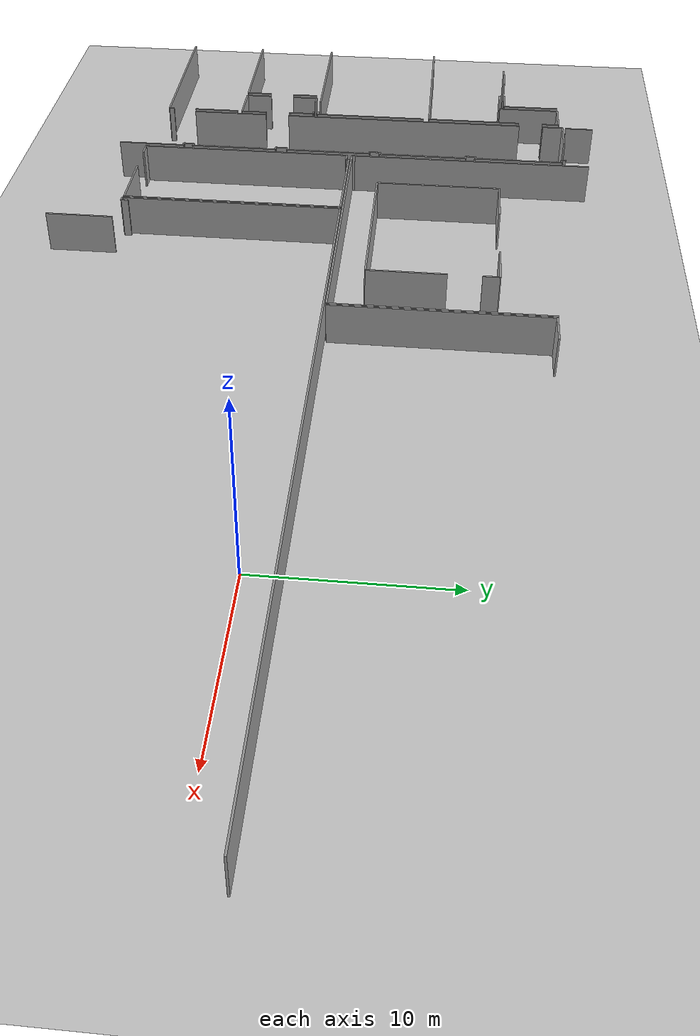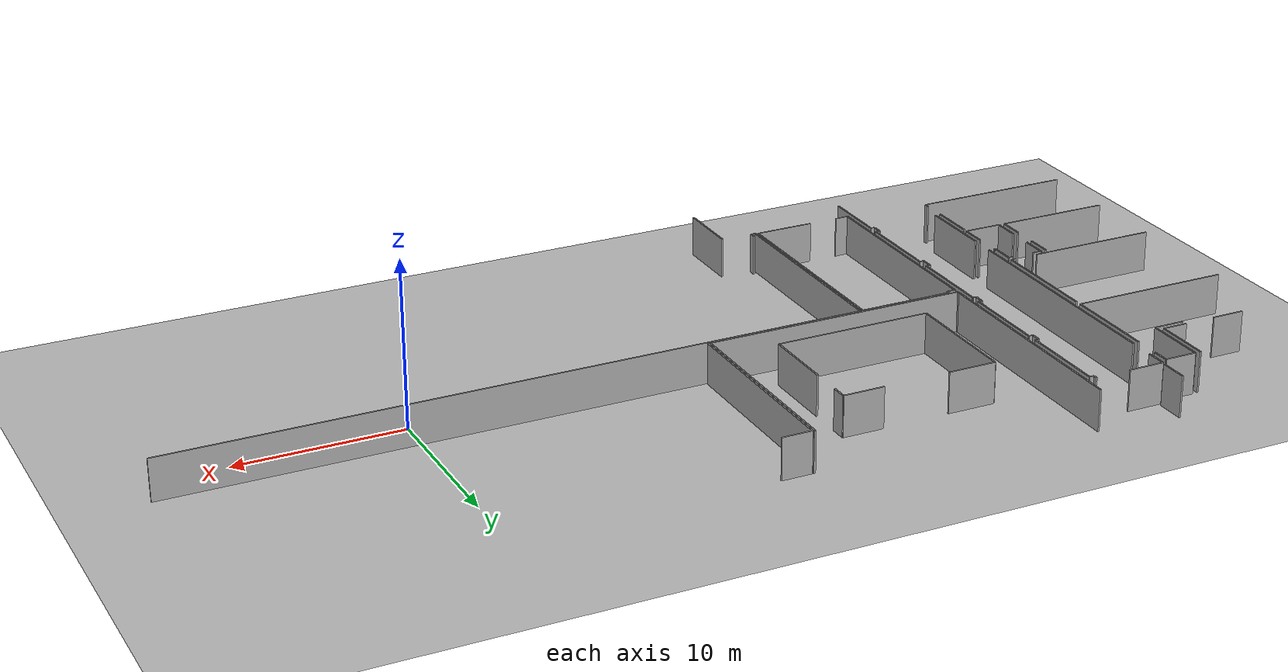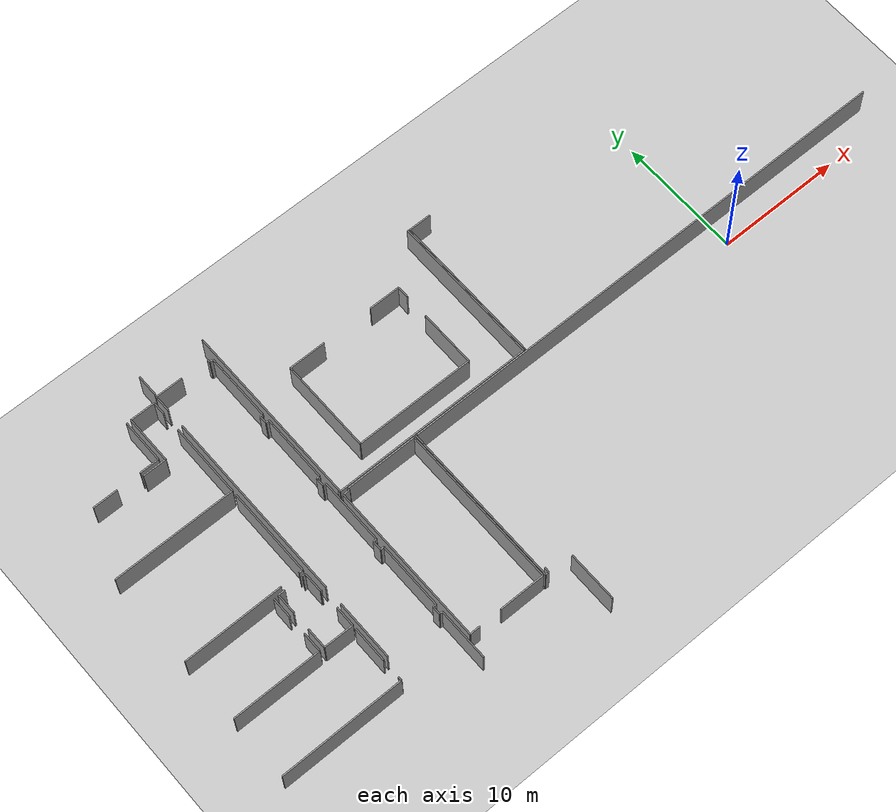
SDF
<sdf version="1.6">
 <world name="default">
  <model name="ground_plane">
   <static>1</static>
   <link name="link">
    <collision name="collision">
     <geometry><plane><normal>0 0 1</normal><size>100 100</size></plane></geometry>
     <surface><friction><ode><mu>100</mu><mu2>50</mu2></ode></friction></surface>
    </collision>
    <visual name="visual">
     <cast_shadows>0</cast_shadows>
     <geometry><plane><normal>0 0 1</normal><size>100 100</size></plane></geometry>
     <material>
      <script><uri>file://media/materials/scripts/gazebo.material</uri><name>Gazebo/Grey</name></script>
     </material>
    </visual>
   </link>
  </model>
  <model name="50010536_PLAN3">
   <static>1</static>
   <link name="Wall_218">
    <collision name="Wall_218_Collision">
     <geometry><box><size>1.7346919341 0.1 2.5</size></box></geometry>
     <pose>0.867345967051 0 1.25 0 0 0</pose>
    </collision>
    <visual name="Wall_218_Visual">
     <pose>0.867345967051 0 1.25 0 0 0</pose>
     <geometry><box><size>1.7346919341 0.1 2.5</size></box></geometry>
     <material>
      <script><uri>file://media/materials/scripts/gazebo.material</uri><name>Gazebo/Grey</name></script>
      <ambient>1 1 1 1</ambient>
     </material>
    </visual>
    <pose>64.3639018506 -13.967482462 0 0 0 1.57079632679</pose>
   </link>
   <link name="Wall_229">
    <collision name="Wall_229_Collision">
     <geometry><box><size>3.50798336666 0.1 2.5</size></box></geometry>
     <pose>1.75399168333 0 1.25 0 0 0</pose>
    </collision>
    <visual name="Wall_229_Visual">
     <pose>1.75399168333 0 1.25 0 0 0</pose>
     <geometry><box><size>3.50798336666 0.1 2.5</size></box></geometry>
     <material>
      <script><uri>file://media/materials/scripts/gazebo.material</uri><name>Gazebo/Grey</name></script>
      <ambient>1 1 1 1</ambient>
     </material>
    </visual>
    <pose>61.6185125226 -14.4126464146 0 0 0 -1.57079632679</pose>
   </link>
   <link name="Wall_230">
    <collision name="Wall_230_Collision">
     <geometry><box><size>1.52544202139 0.1 2.5</size></box></geometry>
     <pose>0.762721010697 0 1.25 0 0 0</pose>
    </collision>
    <visual name="Wall_230_Visual">
     <pose>0.762721010697 0 1.25 0 0 0</pose>
     <geometry><box><size>1.52544202139 0.1 2.5</size></box></geometry>
     <material>
      <script><uri>file://media/materials/scripts/gazebo.material</uri><name>Gazebo/Grey</name></script>
      <ambient>1 1 1 1</ambient>
     </material>
    </visual>
    <pose>61.6185125226 -17.9206297813 0 0 0 3.14159265359</pose>
   </link>
   <link name="Wall_231">
    <collision name="Wall_231_Collision">
     <geometry><box><size>1.97035261909 0.1 2.5</size></box></geometry>
     <pose>0.985176309543 0 1.25 0 0 0</pose>
    </collision>
    <visual name="Wall_231_Visual">
     <pose>0.985176309543 0 1.25 0 0 0</pose>
     <geometry><box><size>1.97035261909 0.1 2.5</size></box></geometry>
     <material>
      <script><uri>file://media/materials/scripts/gazebo.material</uri><name>Gazebo/Grey</name></script>
      <ambient>1 1 1 1</ambient>
     </material>
    </visual>
    <pose>58.1933149224 -17.9206297813 0 0 0 -3.14081935822</pose>
   </link>
   <link name="Wall_235">
    <collision name="Wall_235_Collision">
     <geometry><box><size>1.86623496175 0.1 2.5</size></box></geometry>
     <pose>0.933117480875 0 1.25 0 0 0</pose>
    </collision>
    <visual name="Wall_235_Visual">
     <pose>0.933117480875 0 1.25 0 0 0</pose>
     <geometry><box><size>1.86623496175 0.1 2.5</size></box></geometry>
     <material>
      <script><uri>file://media/materials/scripts/gazebo.material</uri><name>Gazebo/Grey</name></script>
      <ambient>1 1 1 1</ambient>
     </material>
    </visual>
    <pose>60.1077992572 -18.2413611402 0 0 0 0.0</pose>
   </link>
   <link name="Wall_236">
    <collision name="Wall_236_Collision">
     <geometry><box><size>3.81195441704 0.1 2.5</size></box></geometry>
     <pose>1.90597720852 0 1.25 0 0 0</pose>
    </collision>
    <visual name="Wall_236_Visual">
     <pose>1.90597720852 0 1.25 0 0 0</pose>
     <geometry><box><size>3.81195441704 0.1 2.5</size></box></geometry>
     <material>
      <script><uri>file://media/materials/scripts/gazebo.material</uri><name>Gazebo/Grey</name></script>
      <ambient>1 1 1 1</ambient>
     </material>
    </visual>
    <pose>61.974034219 -18.2413611402 0 0 0 1.57079632679</pose>
   </link>
   <link name="Wall_237">
    <collision name="Wall_237_Collision">
     <geometry><box><size>1.95232200108 0.1 2.5</size></box></geometry>
     <pose>0.97616100054 0 1.25 0 0 0</pose>
    </collision>
    <visual name="Wall_237_Visual">
     <pose>0.97616100054 0 1.25 0 0 0</pose>
     <geometry><box><size>1.95232200108 0.1 2.5</size></box></geometry>
     <material>
      <script><uri>file://media/materials/scripts/gazebo.material</uri><name>Gazebo/Grey</name></script>
      <ambient>1 1 1 1</ambient>
     </material>
    </visual>
    <pose>61.974034219 -14.4294067232 0 0 0 0.0</pose>
   </link>
   <link name="Wall_238">
    <collision name="Wall_238_Collision">
     <geometry><box><size>1.05005872457 0.1 2.5</size></box></geometry>
     <pose>0.525029362283 0 1.25 0 0 0</pose>
    </collision>
    <visual name="Wall_238_Visual">
     <pose>0.525029362283 0 1.25 0 0 0</pose>
     <geometry><box><size>1.05005872457 0.1 2.5</size></box></geometry>
     <material>
      <script><uri>file://media/materials/scripts/gazebo.material</uri><name>Gazebo/Grey</name></script>
      <ambient>1 1 1 1</ambient>
     </material>
    </visual>
    <pose>63.92635622 -14.4294067232 0 0 0 -1.57079632679</pose>
   </link>
   <link name="Wall_239">
    <collision name="Wall_239_Collision">
     <geometry><box><size>5.89505761356 0.1 2.5</size></box></geometry>
     <pose>2.94752880678 0 1.25 0 0 0</pose>
    </collision>
    <visual name="Wall_239_Visual">
     <pose>2.94752880678 0 1.25 0 0 0</pose>
     <geometry><box><size>5.89505761356 0.1 2.5</size></box></geometry>
     <material>
      <script><uri>file://media/materials/scripts/gazebo.material</uri><name>Gazebo/Grey</name></script>
      <ambient>1 1 1 1</ambient>
     </material>
    </visual>
    <pose>63.92635622 -17.0252229946 0 0 0 -1.57079632679</pose>
   </link>
   <link name="Wall_240">
    <collision name="Wall_240_Collision">
     <geometry><box><size>9.68034830641 0.1 2.5</size></box></geometry>
     <pose>4.8401741532 0 1.25 0 0 0</pose>
    </collision>
    <visual name="Wall_240_Visual">
     <pose>4.8401741532 0 1.25 0 0 0</pose>
     <geometry><box><size>9.68034830641 0.1 2.5</size></box></geometry>
     <material>
      <script><uri>file://media/materials/scripts/gazebo.material</uri><name>Gazebo/Grey</name></script>
      <ambient>1 1 1 1</ambient>
     </material>
    </visual>
    <pose>63.92635622 -22.9202806082 0 0 0 -3.14130409116</pose>
   </link>
   <link name="Wall_243">
    <collision name="Wall_243_Collision">
     <geometry><box><size>7.04263086055 0.1 2.5</size></box></geometry>
     <pose>3.52131543028 0 1.25 0 0 0</pose>
    </collision>
    <visual name="Wall_243_Visual">
     <pose>3.52131543028 0 1.25 0 0 0</pose>
     <geometry><box><size>7.04263086055 0.1 2.5</size></box></geometry>
     <material>
      <script><uri>file://media/materials/scripts/gazebo.material</uri><name>Gazebo/Grey</name></script>
      <ambient>1 1 1 1</ambient>
     </material>
    </visual>
    <pose>63.929911437 -23.2859600673 0 0 0 -1.57079632679</pose>
   </link>
   <link name="Wall_244">
    <collision name="Wall_244_Collision">
     <geometry><box><size>0.320985302987 0.1 2.5</size></box></geometry>
     <pose>0.160492651494 0 1.25 0 0 0</pose>
    </collision>
    <visual name="Wall_244_Visual">
     <pose>0.160492651494 0 1.25 0 0 0</pose>
     <geometry><box><size>0.320985302987 0.1 2.5</size></box></geometry>
     <material>
      <script><uri>file://media/materials/scripts/gazebo.material</uri><name>Gazebo/Grey</name></script>
      <ambient>1 1 1 1</ambient>
     </material>
    </visual>
    <pose>63.929911437 -30.3285909278 0 0 0 3.14159265359</pose>
   </link>
   <link name="Wall_245">
    <collision name="Wall_245_Collision">
     <geometry><box><size>7.89768474657 0.1 2.5</size></box></geometry>
     <pose>3.94884237328 0 1.25 0 0 0</pose>
    </collision>
    <visual name="Wall_245_Visual">
     <pose>3.94884237328 0 1.25 0 0 0</pose>
     <geometry><box><size>7.89768474657 0.1 2.5</size></box></geometry>
     <material>
      <script><uri>file://media/materials/scripts/gazebo.material</uri><name>Gazebo/Grey</name></script>
      <ambient>1 1 1 1</ambient>
     </material>
    </visual>
    <pose>62.1340189823 -30.3285909278 0 0 0 -3.1391167744</pose>
   </link>
   <link name="Wall_248">
    <collision name="Wall_248_Collision">
     <geometry><box><size>1.59807002508 0.1 2.5</size></box></geometry>
     <pose>0.799035012538 0 1.25 0 0 0</pose>
    </collision>
    <visual name="Wall_248_Visual">
     <pose>0.799035012538 0 1.25 0 0 0</pose>
     <geometry><box><size>1.59807002508 0.1 2.5</size></box></geometry>
     <material>
      <script><uri>file://media/materials/scripts/gazebo.material</uri><name>Gazebo/Grey</name></script>
      <ambient>1 1 1 1</ambient>
     </material>
    </visual>
    <pose>61.2502936228 -30.6886836174 0 0 0 -1.57079632679</pose>
   </link>
   <link name="Wall_249">
    <collision name="Wall_249_Collision">
     <geometry><box><size>1.58181760467 0.1 2.5</size></box></geometry>
     <pose>0.790908802336 0 1.25 0 0 0</pose>
    </collision>
    <visual name="Wall_249_Visual">
     <pose>0.790908802336 0 1.25 0 0 0</pose>
     <geometry><box><size>1.58181760467 0.1 2.5</size></box></geometry>
     <material>
      <script><uri>file://media/materials/scripts/gazebo.material</uri><name>Gazebo/Grey</name></script>
      <ambient>1 1 1 1</ambient>
     </material>
    </visual>
    <pose>61.2502936228 -33.8086404469 0 0 0 -1.57079632679</pose>
   </link>
   <link name="Wall_250">
    <collision name="Wall_250_Collision">
     <geometry><box><size>6.99895248072 0.1 2.5</size></box></geometry>
     <pose>3.49947624036 0 1.25 0 0 0</pose>
    </collision>
    <visual name="Wall_250_Visual">
     <pose>3.49947624036 0 1.25 0 0 0</pose>
     <geometry><box><size>6.99895248072 0.1 2.5</size></box></geometry>
     <material>
      <script><uri>file://media/materials/scripts/gazebo.material</uri><name>Gazebo/Grey</name></script>
      <ambient>1 1 1 1</ambient>
     </material>
    </visual>
    <pose>61.2502936228 -35.3904580516 0 0 0 3.14159265359</pose>
   </link>
   <link name="Wall_251">
    <collision name="Wall_251_Collision">
     <geometry><box><size>1.64047868457 0.1 2.5</size></box></geometry>
     <pose>0.820239342285 0 1.25 0 0 0</pose>
    </collision>
    <visual name="Wall_251_Visual">
     <pose>0.820239342285 0 1.25 0 0 0</pose>
     <geometry><box><size>1.64047868457 0.1 2.5</size></box></geometry>
     <material>
      <script><uri>file://media/materials/scripts/gazebo.material</uri><name>Gazebo/Grey</name></script>
      <ambient>1 1 1 1</ambient>
     </material>
    </visual>
    <pose>61.6284163413 -35.3998539822 0 0 0 1.57079632679</pose>
   </link>
   <link name="Wall_252">
    <collision name="Wall_252_Collision">
     <geometry><box><size>1.58867409453 0.1 2.5</size></box></geometry>
     <pose>0.794337047265 0 1.25 0 0 0</pose>
    </collision>
    <visual name="Wall_252_Visual">
     <pose>0.794337047265 0 1.25 0 0 0</pose>
     <geometry><box><size>1.58867409453 0.1 2.5</size></box></geometry>
     <material>
      <script><uri>file://media/materials/scripts/gazebo.material</uri><name>Gazebo/Grey</name></script>
      <ambient>1 1 1 1</ambient>
     </material>
    </visual>
    <pose>61.6284163413 -32.2524711932 0 0 0 1.57079632679</pose>
   </link>
   <link name="Wall_253">
    <collision name="Wall_253_Collision">
     <geometry><box><size>0.538361425896 0.1 2.5</size></box></geometry>
     <pose>0.269180712948 0 1.25 0 0 0</pose>
    </collision>
    <visual name="Wall_253_Visual">
     <pose>0.269180712948 0 1.25 0 0 0</pose>
     <geometry><box><size>0.538361425896 0.1 2.5</size></box></geometry>
     <material>
      <script><uri>file://media/materials/scripts/gazebo.material</uri><name>Gazebo/Grey</name></script>
      <ambient>1 1 1 1</ambient>
     </material>
    </visual>
    <pose>61.6284163413 -30.6637970987 0 0 0 0.0</pose>
   </link>
   <link name="Wall_254">
    <collision name="Wall_254_Collision">
     <geometry><box><size>0.250896739993 0.1 2.5</size></box></geometry>
     <pose>0.125448369997 0 1.25 0 0 0</pose>
    </collision>
    <visual name="Wall_254_Visual">
     <pose>0.125448369997 0 1.25 0 0 0</pose>
     <geometry><box><size>0.250896739993 0.1 2.5</size></box></geometry>
     <material>
      <script><uri>file://media/materials/scripts/gazebo.material</uri><name>Gazebo/Grey</name></script>
      <ambient>1 1 1 1</ambient>
     </material>
    </visual>
    <pose>63.6335587087 -30.6637970987 0 0 0 0.0</pose>
   </link>
   <link name="Wall_255">
    <collision name="Wall_255_Collision">
     <geometry><box><size>1.55032854014 0.1 2.5</size></box></geometry>
     <pose>0.77516427007 0 1.25 0 0 0</pose>
    </collision>
    <visual name="Wall_255_Visual">
     <pose>0.77516427007 0 1.25 0 0 0</pose>
     <geometry><box><size>1.55032854014 0.1 2.5</size></box></geometry>
     <material>
      <script><uri>file://media/materials/scripts/gazebo.material</uri><name>Gazebo/Grey</name></script>
      <ambient>1 1 1 1</ambient>
     </material>
    </visual>
    <pose>63.8844554487 -30.6637970987 0 0 0 -1.57079632679</pose>
   </link>
   <link name="Wall_256">
    <collision name="Wall_256_Collision">
     <geometry><box><size>0.0838015427102 0.1 2.5</size></box></geometry>
     <pose>0.0419007713551 0 1.25 0 0 0</pose>
    </collision>
    <visual name="Wall_256_Visual">
     <pose>0.0419007713551 0 1.25 0 0 0</pose>
     <geometry><box><size>0.0838015427102 0.1 2.5</size></box></geometry>
     <material>
      <script><uri>file://media/materials/scripts/gazebo.material</uri><name>Gazebo/Grey</name></script>
      <ambient>1 1 1 1</ambient>
     </material>
    </visual>
    <pose>63.8844554487 -32.2141256388 0 0 0 0.0</pose>
   </link>
   <link name="Wall_257">
    <collision name="Wall_257_Collision">
     <geometry><box><size>1.61813160651 0.1 2.5</size></box></geometry>
     <pose>0.809065803257 0 1.25 0 0 0</pose>
    </collision>
    <visual name="Wall_257_Visual">
     <pose>0.809065803257 0 1.25 0 0 0</pose>
     <geometry><box><size>1.61813160651 0.1 2.5</size></box></geometry>
     <material>
      <script><uri>file://media/materials/scripts/gazebo.material</uri><name>Gazebo/Grey</name></script>
      <ambient>1 1 1 1</ambient>
     </material>
    </visual>
    <pose>63.9682569914 -33.8022918452 0 0 0 -1.57079632679</pose>
   </link>
   <link name="Wall_258">
    <collision name="Wall_258_Collision">
     <geometry><box><size>2.33993106115 0.1 2.5</size></box></geometry>
     <pose>1.16996553057 0 1.25 0 0 0</pose>
    </collision>
    <visual name="Wall_258_Visual">
     <pose>1.16996553057 0 1.25 0 0 0</pose>
     <geometry><box><size>2.33993106115 0.1 2.5</size></box></geometry>
     <material>
      <script><uri>file://media/materials/scripts/gazebo.material</uri><name>Gazebo/Grey</name></script>
      <ambient>1 1 1 1</ambient>
     </material>
    </visual>
    <pose>63.9682569914 -35.4204234517 0 0 0 3.13280190978</pose>
   </link>
   <link name="Wall_260">
    <collision name="Wall_260_Collision">
     <geometry><box><size>4.75256324794 0.1 2.5</size></box></geometry>
     <pose>2.37628162397 0 1.25 0 0 0</pose>
    </collision>
    <visual name="Wall_260_Visual">
     <pose>2.37628162397 0 1.25 0 0 0</pose>
     <geometry><box><size>4.75256324794 0.1 2.5</size></box></geometry>
     <material>
      <script><uri>file://media/materials/scripts/gazebo.material</uri><name>Gazebo/Grey</name></script>
      <ambient>1 1 1 1</ambient>
     </material>
    </visual>
    <pose>64.3123512046 -38.5109227693 0 0 0 1.57079632679</pose>
   </link>
   <link name="Wall_261">
    <collision name="Wall_261_Collision">
     <geometry><box><size>15.2539123258 0.1 2.5</size></box></geometry>
     <pose>7.62695616291 0 1.25 0 0 0</pose>
    </collision>
    <visual name="Wall_261_Visual">
     <pose>7.62695616291 0 1.25 0 0 0</pose>
     <geometry><box><size>15.2539123258 0.1 2.5</size></box></geometry>
     <material>
      <script><uri>file://media/materials/scripts/gazebo.material</uri><name>Gazebo/Grey</name></script>
      <ambient>1 1 1 1</ambient>
     </material>
    </visual>
    <pose>64.3123512046 -32.2387582135 0 0 0 1.57079632679</pose>
   </link>
   <link name="Wall_262">
    <collision name="Wall_262_Collision">
     <geometry><box><size>1.28571882043 0.1 2.5</size></box></geometry>
     <pose>0.642859410215 0 1.25 0 0 0</pose>
    </collision>
    <visual name="Wall_262_Visual">
     <pose>0.642859410215 0 1.25 0 0 0</pose>
     <geometry><box><size>1.28571882043 0.1 2.5</size></box></geometry>
     <material>
      <script><uri>file://media/materials/scripts/gazebo.material</uri><name>Gazebo/Grey</name></script>
      <ambient>1 1 1 1</ambient>
     </material>
    </visual>
    <pose>64.3123512046 -15.4505158239 0 0 0 1.57079632679</pose>
   </link>
   <link name="Wall_263">
    <collision name="Wall_263_Collision">
     <geometry><box><size>2.16131796972 0.1 2.5</size></box></geometry>
     <pose>1.08065898486 0 1.25 0 0 0</pose>
    </collision>
    <visual name="Wall_263_Visual">
     <pose>1.08065898486 0 1.25 0 0 0</pose>
     <geometry><box><size>2.16131796972 0.1 2.5</size></box></geometry>
     <material>
      <script><uri>file://media/materials/scripts/gazebo.material</uri><name>Gazebo/Grey</name></script>
      <ambient>1 1 1 1</ambient>
     </material>
    </visual>
    <pose>64.3123512046 -14.1647970035 0 0 0 0.0</pose>
   </link>
   <link name="Wall_264">
    <collision name="Wall_264_Collision">
     <geometry><box><size>0.260546614608 0.1 2.5</size></box></geometry>
     <pose>0.130273307304 0 1.25 0 0 0</pose>
    </collision>
    <visual name="Wall_264_Visual">
     <pose>0.130273307304 0 1.25 0 0 0</pose>
     <geometry><box><size>0.260546614608 0.1 2.5</size></box></geometry>
     <material>
      <script><uri>file://media/materials/scripts/gazebo.material</uri><name>Gazebo/Grey</name></script>
      <ambient>1 1 1 1</ambient>
     </material>
    </visual>
    <pose>68.6525092848 -14.1647970035 0 0 0 -1.57079632679</pose>
   </link>
   <link name="Wall_265">
    <collision name="Wall_265_Collision">
     <geometry><box><size>0.2752753706 0.1 2.5</size></box></geometry>
     <pose>0.1376376853 0 1.25 0 0 0</pose>
    </collision>
    <visual name="Wall_265_Visual">
     <pose>0.1376376853 0 1.25 0 0 0</pose>
     <geometry><box><size>0.2752753706 0.1 2.5</size></box></geometry>
     <material>
      <script><uri>file://media/materials/scripts/gazebo.material</uri><name>Gazebo/Grey</name></script>
      <ambient>1 1 1 1</ambient>
     </material>
    </visual>
    <pose>68.6525092848 -14.4253436181 0 0 0 0.0</pose>
   </link>
   <link name="Wall_266">
    <collision name="Wall_266_Collision">
     <geometry><box><size>5.41053233025 0.1 2.5</size></box></geometry>
     <pose>2.70526616513 0 1.25 0 0 0</pose>
    </collision>
    <visual name="Wall_266_Visual">
     <pose>2.70526616513 0 1.25 0 0 0</pose>
     <geometry><box><size>5.41053233025 0.1 2.5</size></box></geometry>
     <material>
      <script><uri>file://media/materials/scripts/gazebo.material</uri><name>Gazebo/Grey</name></script>
      <ambient>1 1 1 1</ambient>
     </material>
    </visual>
    <pose>68.9277846554 -14.4253436181 0 0 0 -1.57079632679</pose>
   </link>
   <link name="Wall_267">
    <collision name="Wall_267_Collision">
     <geometry><box><size>0.225248389042 0.1 2.5</size></box></geometry>
     <pose>0.112624194521 0 1.25 0 0 0</pose>
    </collision>
    <visual name="Wall_267_Visual">
     <pose>0.112624194521 0 1.25 0 0 0</pose>
     <geometry><box><size>0.225248389042 0.1 2.5</size></box></geometry>
     <material>
      <script><uri>file://media/materials/scripts/gazebo.material</uri><name>Gazebo/Grey</name></script>
      <ambient>1 1 1 1</ambient>
     </material>
    </visual>
    <pose>68.9277846554 -19.8358759483 0 0 0 3.14159265359</pose>
   </link>
   <link name="Wall_268">
    <collision name="Wall_268_Collision">
     <geometry><box><size>0.623178744881 0.1 2.5</size></box></geometry>
     <pose>0.311589372441 0 1.25 0 0 0</pose>
    </collision>
    <visual name="Wall_268_Visual">
     <pose>0.311589372441 0 1.25 0 0 0</pose>
     <geometry><box><size>0.623178744881 0.1 2.5</size></box></geometry>
     <material>
      <script><uri>file://media/materials/scripts/gazebo.material</uri><name>Gazebo/Grey</name></script>
      <ambient>1 1 1 1</ambient>
     </material>
    </visual>
    <pose>68.7025362664 -19.8358759483 0 0 0 -1.57079632679</pose>
   </link>
   <link name="Wall_269">
    <collision name="Wall_269_Collision">
     <geometry><box><size>0.26003872647 0.1 2.5</size></box></geometry>
     <pose>0.130019363235 0 1.25 0 0 0</pose>
    </collision>
    <visual name="Wall_269_Visual">
     <pose>0.130019363235 0 1.25 0 0 0</pose>
     <geometry><box><size>0.26003872647 0.1 2.5</size></box></geometry>
     <material>
      <script><uri>file://media/materials/scripts/gazebo.material</uri><name>Gazebo/Grey</name></script>
      <ambient>1 1 1 1</ambient>
     </material>
    </visual>
    <pose>68.7025362664 -20.4590546932 0 0 0 0.0</pose>
   </link>
   <link name="Wall_270">
    <collision name="Wall_270_Collision">
     <geometry><box><size>5.39148652509 0.1 2.5</size></box></geometry>
     <pose>2.69574326255 0 1.25 0 0 0</pose>
    </collision>
    <visual name="Wall_270_Visual">
     <pose>2.69574326255 0 1.25 0 0 0</pose>
     <geometry><box><size>5.39148652509 0.1 2.5</size></box></geometry>
     <material>
      <script><uri>file://media/materials/scripts/gazebo.material</uri><name>Gazebo/Grey</name></script>
      <ambient>1 1 1 1</ambient>
     </material>
    </visual>
    <pose>68.9625749929 -20.4590546932 0 0 0 -1.57079632679</pose>
   </link>
   <link name="Wall_271">
    <collision name="Wall_271_Collision">
     <geometry><box><size>0.245309970479 0.1 2.5</size></box></geometry>
     <pose>0.122654985239 0 1.25 0 0 0</pose>
    </collision>
    <visual name="Wall_271_Visual">
     <pose>0.122654985239 0 1.25 0 0 0</pose>
     <geometry><box><size>0.245309970479 0.1 2.5</size></box></geometry>
     <material>
      <script><uri>file://media/materials/scripts/gazebo.material</uri><name>Gazebo/Grey</name></script>
      <ambient>1 1 1 1</ambient>
     </material>
    </visual>
    <pose>68.9625749929 -25.8505412183 0 0 0 3.14159265359</pose>
   </link>
   <link name="Wall_272">
    <collision name="Wall_272_Collision">
     <geometry><box><size>0.649081039901 0.1 2.5</size></box></geometry>
     <pose>0.32454051995 0 1.25 0 0 0</pose>
    </collision>
    <visual name="Wall_272_Visual">
     <pose>0.32454051995 0 1.25 0 0 0</pose>
     <geometry><box><size>0.649081039901 0.1 2.5</size></box></geometry>
     <material>
      <script><uri>file://media/materials/scripts/gazebo.material</uri><name>Gazebo/Grey</name></script>
      <ambient>1 1 1 1</ambient>
     </material>
    </visual>
    <pose>68.7172650224 -25.8505412183 0 0 0 -1.57079632679</pose>
   </link>
   <link name="Wall_273">
    <collision name="Wall_273_Collision">
     <geometry><box><size>0.228041773799 0.1 2.5</size></box></geometry>
     <pose>0.1140208869 0 1.25 0 0 0</pose>
    </collision>
    <visual name="Wall_273_Visual">
     <pose>0.1140208869 0 1.25 0 0 0</pose>
     <geometry><box><size>0.228041773799 0.1 2.5</size></box></geometry>
     <material>
      <script><uri>file://media/materials/scripts/gazebo.material</uri><name>Gazebo/Grey</name></script>
      <ambient>1 1 1 1</ambient>
     </material>
    </visual>
    <pose>68.7172650224 -26.4996222582 0 0 0 0.0</pose>
   </link>
   <link name="Wall_274">
    <collision name="Wall_274_Collision">
     <geometry><box><size>5.27721169412 0.1 2.5</size></box></geometry>
     <pose>2.63860584706 0 1.25 0 0 0</pose>
    </collision>
    <visual name="Wall_274_Visual">
     <pose>2.63860584706 0 1.25 0 0 0</pose>
     <geometry><box><size>5.27721169412 0.1 2.5</size></box></geometry>
     <material>
      <script><uri>file://media/materials/scripts/gazebo.material</uri><name>Gazebo/Grey</name></script>
      <ambient>1 1 1 1</ambient>
     </material>
    </visual>
    <pose>68.9453067962 -26.4996222582 0 0 0 -1.57079632679</pose>
   </link>
   <link name="Wall_275">
    <collision name="Wall_275_Collision">
     <geometry><box><size>0.255975621369 0.1 2.5</size></box></geometry>
     <pose>0.127987810685 0 1.25 0 0 0</pose>
    </collision>
    <visual name="Wall_275_Visual">
     <pose>0.127987810685 0 1.25 0 0 0</pose>
     <geometry><box><size>0.255975621369 0.1 2.5</size></box></geometry>
     <material>
      <script><uri>file://media/materials/scripts/gazebo.material</uri><name>Gazebo/Grey</name></script>
      <ambient>1 1 1 1</ambient>
     </material>
    </visual>
    <pose>68.9453067962 -31.7768339523 0 0 0 3.14159265359</pose>
   </link>
   <link name="Wall_276">
    <collision name="Wall_276_Collision">
     <geometry><box><size>0.745833730121 0.1 2.5</size></box></geometry>
     <pose>0.37291686506 0 1.25 0 0 0</pose>
    </collision>
    <visual name="Wall_276_Visual">
     <pose>0.37291686506 0 1.25 0 0 0</pose>
     <geometry><box><size>0.745833730121 0.1 2.5</size></box></geometry>
     <material>
      <script><uri>file://media/materials/scripts/gazebo.material</uri><name>Gazebo/Grey</name></script>
      <ambient>1 1 1 1</ambient>
     </material>
    </visual>
    <pose>68.6893311748 -31.7768339523 0 0 0 -1.57079632679</pose>
   </link>
   <link name="Wall_277">
    <collision name="Wall_277_Collision">
     <geometry><box><size>0.268418880742 0.1 2.5</size></box></geometry>
     <pose>0.134209440371 0 1.25 0 0 0</pose>
    </collision>
    <visual name="Wall_277_Visual">
     <pose>0.134209440371 0 1.25 0 0 0</pose>
     <geometry><box><size>0.268418880742 0.1 2.5</size></box></geometry>
     <material>
      <script><uri>file://media/materials/scripts/gazebo.material</uri><name>Gazebo/Grey</name></script>
      <ambient>1 1 1 1</ambient>
     </material>
    </visual>
    <pose>68.6893311748 -32.5226676824 0 0 0 0.0</pose>
   </link>
   <link name="Wall_278">
    <collision name="Wall_278_Collision">
     <geometry><box><size>5.30387582135 0.1 2.5</size></box></geometry>
     <pose>2.65193791068 0 1.25 0 0 0</pose>
    </collision>
    <visual name="Wall_278_Visual">
     <pose>2.65193791068 0 1.25 0 0 0</pose>
     <geometry><box><size>5.30387582135 0.1 2.5</size></box></geometry>
     <material>
      <script><uri>file://media/materials/scripts/gazebo.material</uri><name>Gazebo/Grey</name></script>
      <ambient>1 1 1 1</ambient>
     </material>
    </visual>
    <pose>68.9577500556 -32.5226676824 0 0 0 -1.57079632679</pose>
   </link>
   <link name="Wall_279">
    <collision name="Wall_279_Collision">
     <geometry><box><size>0.252166460337 0.1 2.5</size></box></geometry>
     <pose>0.126083230169 0 1.25 0 0 0</pose>
    </collision>
    <visual name="Wall_279_Visual">
     <pose>0.126083230169 0 1.25 0 0 0</pose>
     <geometry><box><size>0.252166460337 0.1 2.5</size></box></geometry>
     <material>
      <script><uri>file://media/materials/scripts/gazebo.material</uri><name>Gazebo/Grey</name></script>
      <ambient>1 1 1 1</ambient>
     </material>
    </visual>
    <pose>68.9577500556 -37.8265435038 0 0 0 3.14159265359</pose>
   </link>
   <link name="Wall_280">
    <collision name="Wall_280_Collision">
     <geometry><box><size>0.639177221217 0.1 2.5</size></box></geometry>
     <pose>0.319588610609 0 1.25 0 0 0</pose>
    </collision>
    <visual name="Wall_280_Visual">
     <pose>0.319588610609 0 1.25 0 0 0</pose>
     <geometry><box><size>0.639177221217 0.1 2.5</size></box></geometry>
     <material>
      <script><uri>file://media/materials/scripts/gazebo.material</uri><name>Gazebo/Grey</name></script>
      <ambient>1 1 1 1</ambient>
     </material>
    </visual>
    <pose>68.7055835952 -37.8265435038 0 0 0 -1.57079632679</pose>
   </link>
   <link name="Wall_281">
    <collision name="Wall_281_Collision">
     <geometry><box><size>0.241246865378 0.1 2.5</size></box></geometry>
     <pose>0.120623432689 0 1.25 0 0 0</pose>
    </collision>
    <visual name="Wall_281_Visual">
     <pose>0.120623432689 0 1.25 0 0 0</pose>
     <geometry><box><size>0.241246865378 0.1 2.5</size></box></geometry>
     <material>
      <script><uri>file://media/materials/scripts/gazebo.material</uri><name>Gazebo/Grey</name></script>
      <ambient>1 1 1 1</ambient>
     </material>
    </visual>
    <pose>68.7055835952 -38.465720725 0 0 0 0.0</pose>
   </link>
   <link name="Wall_282">
    <collision name="Wall_282_Collision">
     <geometry><box><size>4.10475192839 0.1 2.5</size></box></geometry>
     <pose>2.05237596419 0 1.25 0 0 0</pose>
    </collision>
    <visual name="Wall_282_Visual">
     <pose>2.05237596419 0 1.25 0 0 0</pose>
     <geometry><box><size>4.10475192839 0.1 2.5</size></box></geometry>
     <material>
      <script><uri>file://media/materials/scripts/gazebo.material</uri><name>Gazebo/Grey</name></script>
      <ambient>1 1 1 1</ambient>
     </material>
    </visual>
    <pose>68.9468304606 -38.465720725 0 0 0 -1.57079632679</pose>
   </link>
   <link name="Wall_287">
    <collision name="Wall_287_Collision">
     <geometry><box><size>2.84341173856 0.1 2.5</size></box></geometry>
     <pose>1.42170586928 0 1.25 0 0 0</pose>
    </collision>
    <visual name="Wall_287_Visual">
     <pose>1.42170586928 0 1.25 0 0 0</pose>
     <geometry><box><size>2.84341173856 0.1 2.5</size></box></geometry>
     <material>
      <script><uri>file://media/materials/scripts/gazebo.material</uri><name>Gazebo/Grey</name></script>
      <ambient>1 1 1 1</ambient>
     </material>
    </visual>
    <pose>63.955559788 -35.71677618 0 0 0 -1.57079632679</pose>
   </link>
   <link name="Wall_288">
    <collision name="Wall_288_Collision">
     <geometry><box><size>0.301431609688 0.1 2.5</size></box></geometry>
     <pose>0.150715804844 0 1.25 0 0 0</pose>
    </collision>
    <visual name="Wall_288_Visual">
     <pose>0.150715804844 0 1.25 0 0 0</pose>
     <geometry><box><size>0.301431609688 0.1 2.5</size></box></geometry>
     <material>
      <script><uri>file://media/materials/scripts/gazebo.material</uri><name>Gazebo/Grey</name></script>
      <ambient>1 1 1 1</ambient>
     </material>
    </visual>
    <pose>63.955559788 -40.0353490144 0 0 0 -1.57079632679</pose>
   </link>
   <link name="Wall_289">
    <collision name="Wall_289_Collision">
     <geometry><box><size>9.7517161888 0.1 2.5</size></box></geometry>
     <pose>4.8758580944 0 1.25 0 0 0</pose>
    </collision>
    <visual name="Wall_289_Visual">
     <pose>4.8758580944 0 1.25 0 0 0</pose>
     <geometry><box><size>9.7517161888 0.1 2.5</size></box></geometry>
     <material>
      <script><uri>file://media/materials/scripts/gazebo.material</uri><name>Gazebo/Grey</name></script>
      <ambient>1 1 1 1</ambient>
     </material>
    </visual>
    <pose>63.955559788 -40.3367806241 0 0 0 -3.1401604002</pose>
   </link>
   <link name="Wall_360">
    <collision name="Wall_360_Collision">
     <geometry><box><size>3.97752594991 0.1 2.5</size></box></geometry>
     <pose>1.98876297495 0 1.25 0 0 0</pose>
    </collision>
    <visual name="Wall_360_Visual">
     <pose>1.98876297495 0 1.25 0 0 0</pose>
     <geometry><box><size>3.97752594991 0.1 2.5</size></box></geometry>
     <material>
      <script><uri>file://media/materials/scripts/gazebo.material</uri><name>Gazebo/Grey</name></script>
      <ambient>1 1 1 1</ambient>
     </material>
    </visual>
    <pose>77.9016601593 -40.9726565724 0 0 0 -1.57079632679</pose>
   </link>
   <link name="Wall_367">
    <collision name="Wall_367_Collision">
     <geometry><box><size>12.8960416468 0.1 2.5</size></box></geometry>
     <pose>6.44802082341 0 1.25 0 0 0</pose>
    </collision>
    <visual name="Wall_367_Visual">
     <pose>6.44802082341 0 1.25 0 0 0</pose>
     <geometry><box><size>12.8960416468 0.1 2.5</size></box></geometry>
     <material>
      <script><uri>file://media/materials/scripts/gazebo.material</uri><name>Gazebo/Grey</name></script>
      <ambient>1 1 1 1</ambient>
     </material>
    </visual>
    <pose>69.2980351078 -40.8106402565 0 0 0 1.57079632679</pose>
   </link>
   <link name="Wall_368">
    <collision name="Wall_368_Collision">
     <geometry><box><size>0.519823508872 0.1 2.5</size></box></geometry>
     <pose>0.259911754436 0 1.25 0 0 0</pose>
    </collision>
    <visual name="Wall_368_Visual">
     <pose>0.259911754436 0 1.25 0 0 0</pose>
     <geometry><box><size>0.519823508872 0.1 2.5</size></box></geometry>
     <material>
      <script><uri>file://media/materials/scripts/gazebo.material</uri><name>Gazebo/Grey</name></script>
      <ambient>1 1 1 1</ambient>
     </material>
    </visual>
    <pose>69.2980351078 -27.9145986097 0 0 0 0.0</pose>
   </link>
   <link name="Wall_369">
    <collision name="Wall_369_Collision">
     <geometry><box><size>0.169126749833 0.1 2.5</size></box></geometry>
     <pose>0.0845633749167 0 1.25 0 0 0</pose>
    </collision>
    <visual name="Wall_369_Visual">
     <pose>0.0845633749167 0 1.25 0 0 0</pose>
     <geometry><box><size>0.169126749833 0.1 2.5</size></box></geometry>
     <material>
      <script><uri>file://media/materials/scripts/gazebo.material</uri><name>Gazebo/Grey</name></script>
      <ambient>1 1 1 1</ambient>
     </material>
    </visual>
    <pose>69.8178586166 -27.9145986097 0 0 0 1.57079632679</pose>
   </link>
   <link name="Wall_370">
    <collision name="Wall_370_Collision">
     <geometry><box><size>5.71932831794 0.1 2.5</size></box></geometry>
     <pose>2.85966415897 0 1.25 0 0 0</pose>
    </collision>
    <visual name="Wall_370_Visual">
     <pose>2.85966415897 0 1.25 0 0 0</pose>
     <geometry><box><size>5.71932831794 0.1 2.5</size></box></geometry>
     <material>
      <script><uri>file://media/materials/scripts/gazebo.material</uri><name>Gazebo/Grey</name></script>
      <ambient>1 1 1 1</ambient>
     </material>
    </visual>
    <pose>69.8178586166 -27.7454718598 0 0 0 0.0</pose>
   </link>
   <link name="Wall_371">
    <collision name="Wall_371_Collision">
     <geometry><box><size>13.0537409136 0.1 2.5</size></box></geometry>
     <pose>6.52687045678 0 1.25 0 0 0</pose>
    </collision>
    <visual name="Wall_371_Visual">
     <pose>6.52687045678 0 1.25 0 0 0</pose>
     <geometry><box><size>13.0537409136 0.1 2.5</size></box></geometry>
     <material>
      <script><uri>file://media/materials/scripts/gazebo.material</uri><name>Gazebo/Grey</name></script>
      <ambient>1 1 1 1</ambient>
     </material>
    </visual>
    <pose>75.5371869346 -27.7454718598 0 0 0 -1.57079632679</pose>
   </link>
   <link name="Wall_372">
    <collision name="Wall_372_Collision">
     <geometry><box><size>3.61794114846 0.1 2.5</size></box></geometry>
     <pose>1.80897057423 0 1.25 0 0 0</pose>
    </collision>
    <visual name="Wall_372_Visual">
     <pose>1.80897057423 0 1.25 0 0 0</pose>
     <geometry><box><size>3.61794114846 0.1 2.5</size></box></geometry>
     <material>
      <script><uri>file://media/materials/scripts/gazebo.material</uri><name>Gazebo/Grey</name></script>
      <ambient>1 1 1 1</ambient>
     </material>
    </visual>
    <pose>75.5371869346 -40.7992127734 0 0 0 3.14159265359</pose>
   </link>
   <link name="Wall_373">
    <collision name="Wall_373_Collision">
     <geometry><box><size>0.832761011619 0.1 2.5</size></box></geometry>
     <pose>0.416380505809 0 1.25 0 0 0</pose>
    </collision>
    <visual name="Wall_373_Visual">
     <pose>0.416380505809 0 1.25 0 0 0</pose>
     <geometry><box><size>0.832761011619 0.1 2.5</size></box></geometry>
     <material>
      <script><uri>file://media/materials/scripts/gazebo.material</uri><name>Gazebo/Grey</name></script>
      <ambient>1 1 1 1</ambient>
     </material>
    </visual>
    <pose>70.1307177094 -40.7992127734 0 0 0 -3.12786981882</pose>
   </link>
   <link name="Wall_622">
    <collision name="Wall_622_Collision">
     <geometry><box><size>7.43294289433 0.1 2.5</size></box></geometry>
     <pose>3.71647144716 0 1.25 0 0 0</pose>
    </collision>
    <visual name="Wall_622_Visual">
     <pose>3.71647144716 0 1.25 0 0 0</pose>
     <geometry><box><size>7.43294289433 0.1 2.5</size></box></geometry>
     <material>
      <script><uri>file://media/materials/scripts/gazebo.material</uri><name>Gazebo/Grey</name></script>
      <ambient>1 1 1 1</ambient>
     </material>
    </visual>
    <pose>72.4972224867 -25.7692791163 0 0 0 1.57079632679</pose>
   </link>
   <link name="Wall_623">
    <collision name="Wall_623_Collision">
     <geometry><box><size>2.91426213377 0.1 2.5</size></box></geometry>
     <pose>1.45713106688 0 1.25 0 0 0</pose>
    </collision>
    <visual name="Wall_623_Visual">
     <pose>1.45713106688 0 1.25 0 0 0</pose>
     <geometry><box><size>2.91426213377 0.1 2.5</size></box></geometry>
     <material>
      <script><uri>file://media/materials/scripts/gazebo.material</uri><name>Gazebo/Grey</name></script>
      <ambient>1 1 1 1</ambient>
     </material>
    </visual>
    <pose>72.4972224867 -18.3363362219 0 0 0 0.0</pose>
   </link>
   <link name="Wall_624">
    <collision name="Wall_624_Collision">
     <geometry><box><size>2.50820556772 0.1 2.5</size></box></geometry>
     <pose>1.25410278386 0 1.25 0 0 0</pose>
    </collision>
    <visual name="Wall_624_Visual">
     <pose>1.25410278386 0 1.25 0 0 0</pose>
     <geometry><box><size>2.50820556772 0.1 2.5</size></box></geometry>
     <material>
      <script><uri>file://media/materials/scripts/gazebo.material</uri><name>Gazebo/Grey</name></script>
      <ambient>1 1 1 1</ambient>
     </material>
    </visual>
    <pose>79.4763673301 -18.3363362219 0 0 0 0.0</pose>
   </link>
   <link name="Wall_625">
    <collision name="Wall_625_Collision">
     <geometry><box><size>0.963463797099 0.1 2.5</size></box></geometry>
     <pose>0.481731898549 0 1.25 0 0 0</pose>
    </collision>
    <visual name="Wall_625_Visual">
     <pose>0.481731898549 0 1.25 0 0 0</pose>
     <geometry><box><size>0.963463797099 0.1 2.5</size></box></geometry>
     <material>
      <script><uri>file://media/materials/scripts/gazebo.material</uri><name>Gazebo/Grey</name></script>
      <ambient>1 1 1 1</ambient>
     </material>
    </visual>
    <pose>81.9845728978 -18.3363362219 0 0 0 -1.57079632679</pose>
   </link>
   <link name="Wall_626">
    <collision name="Wall_626_Collision">
     <geometry><box><size>4.53594895724 0.1 2.5</size></box></geometry>
     <pose>2.26797447862 0 1.25 0 0 0</pose>
    </collision>
    <visual name="Wall_626_Visual">
     <pose>2.26797447862 0 1.25 0 0 0</pose>
     <geometry><box><size>4.53594895724 0.1 2.5</size></box></geometry>
     <material>
      <script><uri>file://media/materials/scripts/gazebo.material</uri><name>Gazebo/Grey</name></script>
      <ambient>1 1 1 1</ambient>
     </material>
    </visual>
    <pose>81.9845728978 -21.2279973336 0 0 0 -1.57079632679</pose>
   </link>
   <link name="Wall_627">
    <collision name="Wall_627_Collision">
     <geometry><box><size>9.48735190986 0.1 2.5</size></box></geometry>
     <pose>4.74367595493 0 1.25 0 0 0</pose>
    </collision>
    <visual name="Wall_627_Visual">
     <pose>4.74367595493 0 1.25 0 0 0</pose>
     <geometry><box><size>9.48735190986 0.1 2.5</size></box></geometry>
     <material>
      <script><uri>file://media/materials/scripts/gazebo.material</uri><name>Gazebo/Grey</name></script>
      <ambient>1 1 1 1</ambient>
     </material>
    </visual>
    <pose>81.9845728978 -25.7639462908 0 0 0 -3.14103055515</pose>
   </link>
   <link name="Wall_628">
    <collision name="Wall_628_Collision">
     <geometry><box><size>14.6172745453 0.1 2.5</size></box></geometry>
     <pose>7.30863727264 0 1.25 0 0 0</pose>
    </collision>
    <visual name="Wall_628_Visual">
     <pose>7.30863727264 0 1.25 0 0 0</pose>
     <geometry><box><size>14.6172745453 0.1 2.5</size></box></geometry>
     <material>
      <script><uri>file://media/materials/scripts/gazebo.material</uri><name>Gazebo/Grey</name></script>
      <ambient>1 1 1 1</ambient>
     </material>
    </visual>
    <pose>69.2993048281 -27.3904580516 0 0 0 1.57079632679</pose>
   </link>
   <link name="Wall_634">
    <collision name="Wall_634_Collision">
     <geometry><box><size>12.3043519665 0.1 2.5</size></box></geometry>
     <pose>6.15217598324 0 1.25 0 0 0</pose>
    </collision>
    <visual name="Wall_634_Visual">
     <pose>6.15217598324 0 1.25 0 0 0</pose>
     <geometry><box><size>12.3043519665 0.1 2.5</size></box></geometry>
     <material>
      <script><uri>file://media/materials/scripts/gazebo.material</uri><name>Gazebo/Grey</name></script>
      <ambient>1 1 1 1</ambient>
     </material>
    </visual>
    <pose>85.335872774 -15.284690347 0 0 0 -1.57079632679</pose>
   </link>
   <link name="Wall_635">
    <collision name="Wall_635_Collision">
     <geometry><box><size>16.0383455544 0.1 2.5</size></box></geometry>
     <pose>8.0191727772 0 1.25 0 0 0</pose>
    </collision>
    <visual name="Wall_635_Visual">
     <pose>8.0191727772 0 1.25 0 0 0</pose>
     <geometry><box><size>16.0383455544 0.1 2.5</size></box></geometry>
     <material>
      <script><uri>file://media/materials/scripts/gazebo.material</uri><name>Gazebo/Grey</name></script>
      <ambient>1 1 1 1</ambient>
     </material>
    </visual>
    <pose>85.335872774 -27.5890423134 0 0 0 3.14159265359</pose>
   </link>
   <link name="Wall_636">
    <collision name="Wall_636_Collision">
     <geometry><box><size>0.198592217705 0.1 2.5</size></box></geometry>
     <pose>0.0992961088526 0 1.25 0 0 0</pose>
    </collision>
    <visual name="Wall_636_Visual">
     <pose>0.0992961088526 0 1.25 0 0 0</pose>
     <geometry><box><size>0.198592217705 0.1 2.5</size></box></geometry>
     <material>
      <script><uri>file://media/materials/scripts/gazebo.material</uri><name>Gazebo/Grey</name></script>
      <ambient>1 1 1 1</ambient>
     </material>
    </visual>
    <pose>69.2975272196 -27.5890423134 0 0 0 1.56184515922</pose>
   </link>
   <link name="Wall_637">
    <collision name="Wall_637_Collision">
     <geometry><box><size>12.2365489001 0.1 2.5</size></box></geometry>
     <pose>6.11827445005 0 1.25 0 0 0</pose>
    </collision>
    <visual name="Wall_637_Visual">
     <pose>6.11827445005 0 1.25 0 0 0</pose>
     <geometry><box><size>12.2365489001 0.1 2.5</size></box></geometry>
     <material>
      <script><uri>file://media/materials/scripts/gazebo.material</uri><name>Gazebo/Grey</name></script>
      <ambient>1 1 1 1</ambient>
     </material>
    </visual>
    <pose>85.4610671999 -27.5966606355 0 0 0 1.57079632679</pose>
   </link>
   <link name="Wall_638">
    <collision name="Wall_638_Collision">
     <geometry><box><size>1.8210329175 0.1 2.5</size></box></geometry>
     <pose>0.91051645875 0 1.25 0 0 0</pose>
    </collision>
    <visual name="Wall_638_Visual">
     <pose>0.91051645875 0 1.25 0 0 0</pose>
     <geometry><box><size>1.8210329175 0.1 2.5</size></box></geometry>
     <material>
      <script><uri>file://media/materials/scripts/gazebo.material</uri><name>Gazebo/Grey</name></script>
      <ambient>1 1 1 1</ambient>
     </material>
    </visual>
    <pose>85.4610671999 -15.3601117354 0 0 0 0.0</pose>
   </link>
   <link name="Wall_649">
    <collision name="Wall_649_Collision">
     <geometry><box><size>41.4741453195 0.1 2.5</size></box></geometry>
     <pose>20.7370726597 0 1.25 0 0 0</pose>
    </collision>
    <visual name="Wall_649_Visual">
     <pose>20.7370726597 0 1.25 0 0 0</pose>
     <geometry><box><size>41.4741453195 0.1 2.5</size></box></geometry>
     <material>
      <script><uri>file://media/materials/scripts/gazebo.material</uri><name>Gazebo/Grey</name></script>
      <ambient>1 1 1 1</ambient>
     </material>
    </visual>
    <pose>75.771069422 -27.7325207123 0 0 0 0.0</pose>
   </link>
   <link name="Wall_681">
    <collision name="Wall_681_Collision">
     <geometry><box><size>0.414436720312 0.1 2.5</size></box></geometry>
     <pose>0.207218360156 0 1.25 0 0 0</pose>
    </collision>
    <visual name="Wall_681_Visual">
     <pose>0.207218360156 0 1.25 0 0 0</pose>
     <geometry><box><size>0.414436720312 0.1 2.5</size></box></geometry>
     <material>
      <script><uri>file://media/materials/scripts/gazebo.material</uri><name>Gazebo/Grey</name></script>
      <ambient>1 1 1 1</ambient>
     </material>
    </visual>
    <pose>75.9701615719 -40.4558803923 0 0 0 -1.57079632679</pose>
   </link>
   <link name="Wall_682">
    <collision name="Wall_682_Collision">
     <geometry><box><size>0.276291146875 0.1 2.5</size></box></geometry>
     <pose>0.138145573437 0 1.25 0 0 0</pose>
    </collision>
    <visual name="Wall_682_Visual">
     <pose>0.138145573437 0 1.25 0 0 0</pose>
     <geometry><box><size>0.276291146875 0.1 2.5</size></box></geometry>
     <material>
      <script><uri>file://media/materials/scripts/gazebo.material</uri><name>Gazebo/Grey</name></script>
      <ambient>1 1 1 1</ambient>
     </material>
    </visual>
    <pose>75.9701615719 -40.8703171127 0 0 0 3.14159265359</pose>
   </link>
   <link name="Wall_683">
    <collision name="Wall_683_Collision">
     <geometry><box><size>13.1431292258 0.1 2.5</size></box></geometry>
     <pose>6.57156461289 0 1.25 0 0 0</pose>
    </collision>
    <visual name="Wall_683_Visual">
     <pose>6.57156461289 0 1.25 0 0 0</pose>
     <geometry><box><size>13.1431292258 0.1 2.5</size></box></geometry>
     <material>
      <script><uri>file://media/materials/scripts/gazebo.material</uri><name>Gazebo/Grey</name></script>
      <ambient>1 1 1 1</ambient>
     </material>
    </visual>
    <pose>75.693870425 -40.8703171127 0 0 0 1.57079632679</pose>
   </link>
   <link name="Wall_684">
    <collision name="Wall_684_Collision">
     <geometry><box><size>0.0773829706901 0.1 2.5</size></box></geometry>
     <pose>0.0386914853451 0 1.25 0 0 0</pose>
    </collision>
    <visual name="Wall_684_Visual">
     <pose>0.0386914853451 0 1.25 0 0 0</pose>
     <geometry><box><size>0.0773829706901 0.1 2.5</size></box></geometry>
     <material>
      <script><uri>file://media/materials/scripts/gazebo.material</uri><name>Gazebo/Grey</name></script>
      <ambient>1 1 1 1</ambient>
     </material>
    </visual>
    <pose>75.693870425 -27.7271878869 0 0 0 -0.0689693816013</pose>
   </link>
   <pose>-102.5 29.6500539631 0 0 0 0</pose>
  </model>
 </world>
</sdf>
